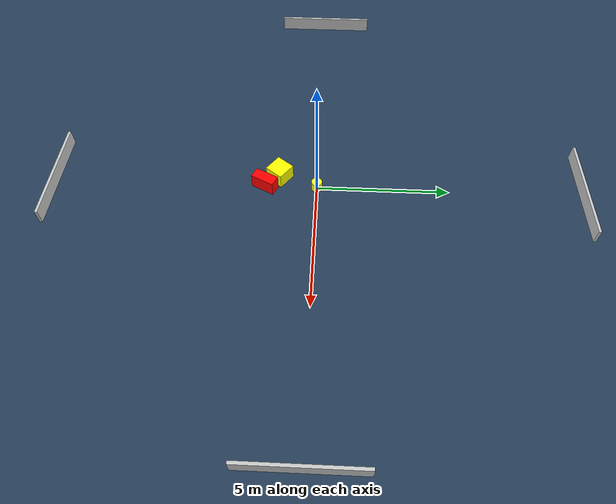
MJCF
<?xml version="1.0" ?>
<mujoco model="generated_environment">
  <option timestep="0.01" integrator="RK4" cone="elliptic"/>
  <default>
    <geom density="1"/>
  </default>
  <asset>
    <texture builtin="gradient" height="3072" name="skybox" rgb1="0.3 0.5 0.7" rgb2="0 0 0" type="skybox" width="512"/>
    <texture builtin="checker" height="300" name="groundplane" rgb1="0.2 0.3 0.4" rgb2="0.1 0.2 0.3" type="2d" width="300"/>
    <material name="groundplane" reflectance="0.2" texrepeat="5 5" texture="groundplane"/>
  </asset>
  <worldbody>
    <light dir="0 0 -1" directional="true" pos="0 0 1.5"/>
    <geom condim="3" friction="0.5 0.005 0.001" material="groundplane" name="floor" pos="0 0 0" size="0 0 0.05" type="plane"/>
    <body name="walls">
      <geom name="wall_1" condim="4" pos="-10.0 0.0 0.3" rgba="0.800000011920929 0.800000011920929 0.800000011920929 1.0" size="0.05 2.0 0.3" type="box"/>
      <geom name="wall_2" condim="4" pos="10.0 0.0 0.3" rgba="0.800000011920929 0.800000011920929 0.800000011920929 1.0" size="0.05 2.0 0.3" type="box"/>
      <geom name="wall_3" condim="4" pos="0.0 -10.0 0.3" rgba="0.800000011920929 0.800000011920929 0.800000011920929 1.0" size="2.0 0.05 0.3" type="box"/>
      <geom name="wall_4" condim="4" pos="0.0 10.0 0.3" rgba="0.800000011920929 0.800000011920929 0.800000011920929 1.0" size="2.0 0.05 0.3" type="box"/>
    </body>
    <body name="robot">
      <joint name="joint_x" type="slide" pos="0 0 0" axis="1 0 0"/>
      <joint name="joint_y" type="slide" pos="0 0 0" axis="0 1 0"/>
      <geom name="robot" type="cylinder" pos="0.0 0.0 0.2" size="0.2 0.2 0.0" mass="5.0" friction="1.0 0.005 0.0001" condim="4" rgba="1.0 1.0 0.0 1.0"/>
    </body>
    <body name="obstacle_1_movable">
      <geom name="obstacle_1_movable" condim="4" pos="-0.504198470935998 -1.4384501528924813 0.3" euler="0 0 323.03290758698665" friction="0.0 0.005 0.001" rgba="1.0 1.0 0.0 1.0" size="0.3601129309639971 0.36411339824557615 0.3" type="box" mass="0.1"/>
      <joint type="free"/>
    </body>
    <body name="obstacle_2_static">
      <geom name="obstacle_2_static" condim="4" pos="-0.012545373101284908 -1.9696613514050194 0.3" euler="0 0 333.6586625615947" friction="0.0 0.005 0.001" rgba="1.0 0.0 0.0 1.0" size="0.20652321208099242 0.4588537869030114 0.3" type="box"/>
    </body>
  </worldbody>
  <actuator>
    <motor name="actuator_x" joint="joint_x" gear="1" ctrlrange="-1 1"/>
    <motor name="actuator_y" joint="joint_y" gear="1" ctrlrange="-1 1"/>
  </actuator>
</mujoco>
